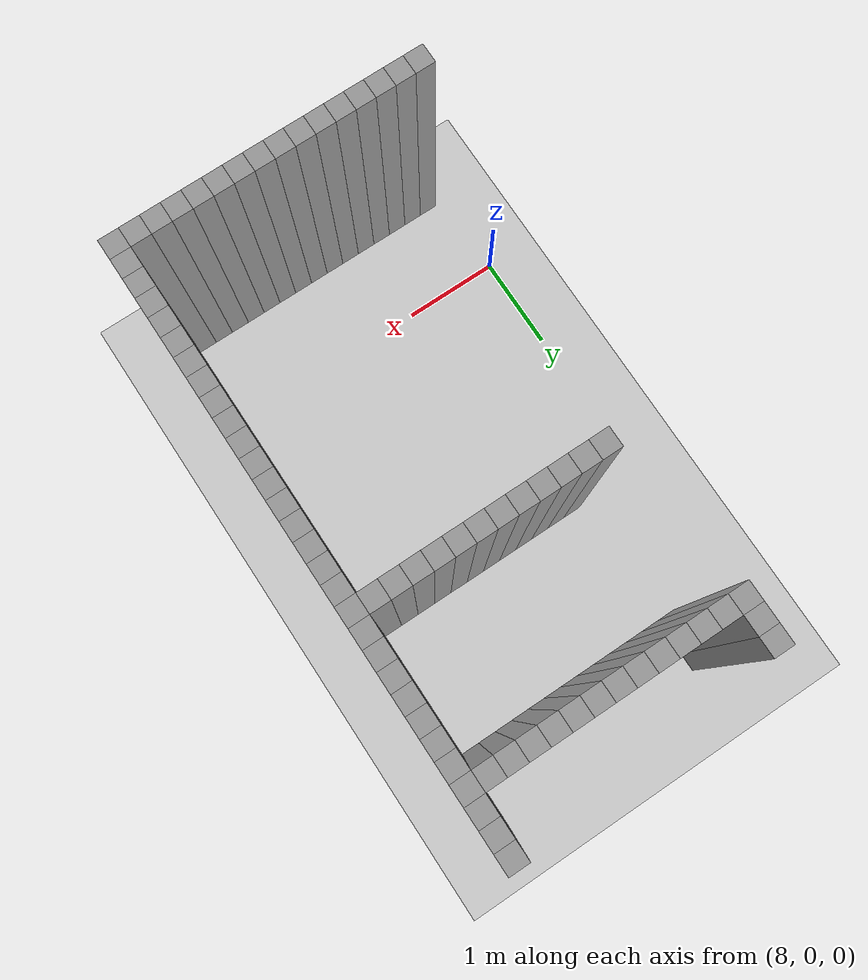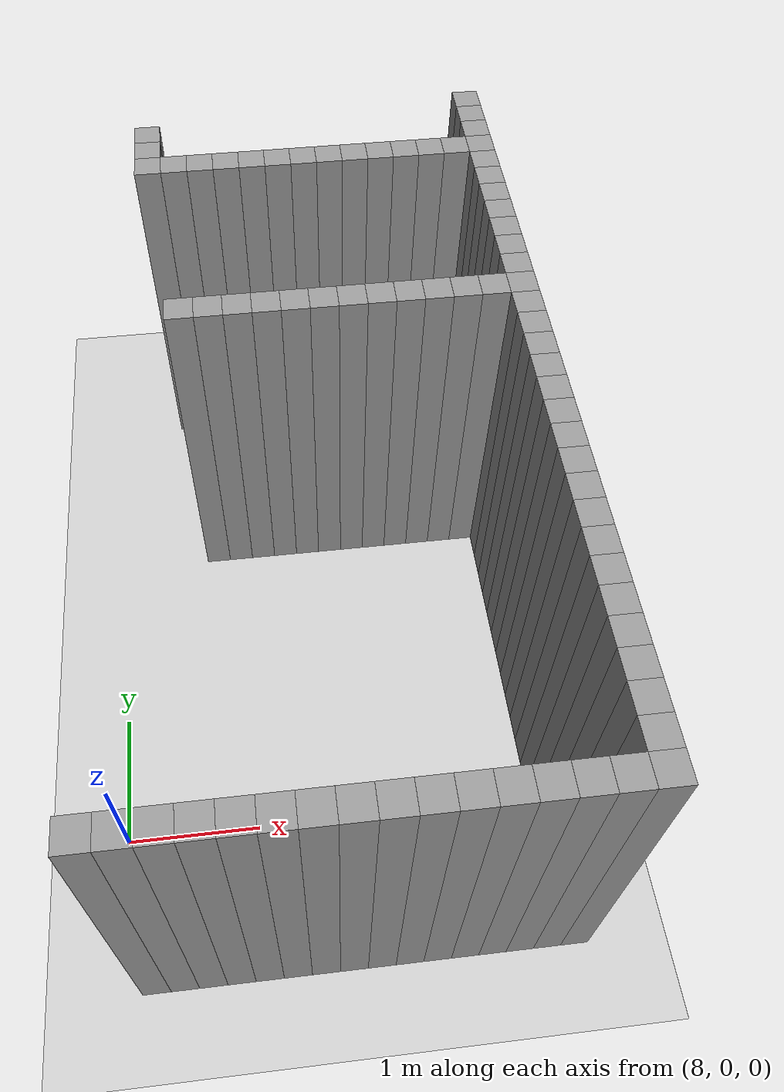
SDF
<sdf version="1.7">
 <world name="default">
  <model name="ground_plane">
   <static>1</static>
   <link name="link">
    <collision name="collision">
     <geometry><plane><normal>0 0 1</normal><size>100 100</size></plane></geometry>
     <surface>
      <contact><collide_bitmask>65535</collide_bitmask></contact>
      <friction><ode><mu>100</mu><mu2>50</mu2></ode></friction>
     </surface>
    </collision>
    <visual name="visual">
     <cast_shadows>0</cast_shadows>
     <geometry><plane><normal>0 0 1</normal><size>100 100</size></plane></geometry>
     <material>
      <script><uri>file://media/materials/scripts/gazebo.material</uri><name>Gazebo/Grey</name></script>
     </material>
    </visual>
   </link>
  </model>
  <model name="image1">
   <pose>-1 -1 0 0 -0 0</pose>
   <link name="Wall_357">
    <collision name="Wall_357_Collision">
     <geometry><box><size>0.2 0.2 3</size></box></geometry>
     <pose>0 0 1.5 0 -0 0</pose>
    </collision>
    <visual name="Wall_357_Visual">
     <pose>0 0 1.5 0 -0 0</pose>
     <geometry><box><size>0.2 0.2 3</size></box></geometry>
     <material>
      <script><uri>file://media/materials/scripts/gazebo.material</uri><name>Gazebo/Grey</name></script>
      <ambient>1 1 1 1</ambient>
     </material>
     <meta><layer>0</layer></meta>
    </visual>
    <pose>9.200000000000001 0.0 0 0 -0 0</pose>
   </link>
   <link name="Wall_360">
    <collision name="Wall_360_Collision">
     <geometry><box><size>0.2 0.2 3</size></box></geometry>
     <pose>0 0 1.5 0 -0 0</pose>
    </collision>
    <visual name="Wall_360_Visual">
     <pose>0 0 1.5 0 -0 0</pose>
     <geometry><box><size>0.2 0.2 3</size></box></geometry>
     <material>
      <script><uri>file://media/materials/scripts/gazebo.material</uri><name>Gazebo/Grey</name></script>
      <ambient>1 1 1 1</ambient>
     </material>
     <meta><layer>0</layer></meta>
    </visual>
    <pose>9.4 0.0 0 0 -0 0</pose>
   </link>
   <link name="Wall_363">
    <collision name="Wall_363_Collision">
     <geometry><box><size>0.2 0.2 3</size></box></geometry>
     <pose>0 0 1.5 0 -0 0</pose>
    </collision>
    <visual name="Wall_363_Visual">
     <pose>0 0 1.5 0 -0 0</pose>
     <geometry><box><size>0.2 0.2 3</size></box></geometry>
     <material>
      <script><uri>file://media/materials/scripts/gazebo.material</uri><name>Gazebo/Grey</name></script>
      <ambient>1 1 1 1</ambient>
     </material>
     <meta><layer>0</layer></meta>
    </visual>
    <pose>9.600000000000001 0.0 0 0 -0 0</pose>
   </link>
   <link name="Wall_364">
    <collision name="Wall_364_Collision">
     <geometry><box><size>0.2 0.2 3</size></box></geometry>
     <pose>0 0 1.5 0 -0 0</pose>
    </collision>
    <visual name="Wall_364_Visual">
     <pose>0 0 1.5 0 -0 0</pose>
     <geometry><box><size>0.2 0.2 3</size></box></geometry>
     <material>
      <script><uri>file://media/materials/scripts/gazebo.material</uri><name>Gazebo/Grey</name></script>
      <ambient>1 1 1 1</ambient>
     </material>
     <meta><layer>0</layer></meta>
    </visual>
    <pose>9.600000000000001 5.2 0 0 -0 0</pose>
   </link>
   <link name="Wall_365">
    <collision name="Wall_365_Collision">
     <geometry><box><size>0.2 0.2 3</size></box></geometry>
     <pose>0 0 1.5 0 -0 0</pose>
    </collision>
    <visual name="Wall_365_Visual">
     <pose>0 0 1.5 0 -0 0</pose>
     <geometry><box><size>0.2 0.2 3</size></box></geometry>
     <material>
      <script><uri>file://media/materials/scripts/gazebo.material</uri><name>Gazebo/Grey</name></script>
      <ambient>1 1 1 1</ambient>
     </material>
     <meta><layer>0</layer></meta>
    </visual>
    <pose>9.600000000000001 5.4 0 0 -0 0</pose>
   </link>
   <link name="Wall_366">
    <collision name="Wall_366_Collision">
     <geometry><box><size>0.2 0.2 3</size></box></geometry>
     <pose>0 0 1.5 0 -0 0</pose>
    </collision>
    <visual name="Wall_366_Visual">
     <pose>0 0 1.5 0 -0 0</pose>
     <geometry><box><size>0.2 0.2 3</size></box></geometry>
     <material>
      <script><uri>file://media/materials/scripts/gazebo.material</uri><name>Gazebo/Grey</name></script>
      <ambient>1 1 1 1</ambient>
     </material>
     <meta><layer>0</layer></meta>
    </visual>
    <pose>9.600000000000001 5.6000000000000005 0 0 -0 0</pose>
   </link>
   <link name="Wall_370">
    <collision name="Wall_370_Collision">
     <geometry><box><size>0.2 0.2 3</size></box></geometry>
     <pose>0 0 1.5 0 -0 0</pose>
    </collision>
    <visual name="Wall_370_Visual">
     <pose>0 0 1.5 0 -0 0</pose>
     <geometry><box><size>0.2 0.2 3</size></box></geometry>
     <material>
      <script><uri>file://media/materials/scripts/gazebo.material</uri><name>Gazebo/Grey</name></script>
      <ambient>1 1 1 1</ambient>
     </material>
     <meta><layer>0</layer></meta>
    </visual>
    <pose>9.8 0.0 0 0 -0 0</pose>
   </link>
   <link name="Wall_371">
    <collision name="Wall_371_Collision">
     <geometry><box><size>0.2 0.2 3</size></box></geometry>
     <pose>0 0 1.5 0 -0 0</pose>
    </collision>
    <visual name="Wall_371_Visual">
     <pose>0 0 1.5 0 -0 0</pose>
     <geometry><box><size>0.2 0.2 3</size></box></geometry>
     <material>
      <script><uri>file://media/materials/scripts/gazebo.material</uri><name>Gazebo/Grey</name></script>
      <ambient>1 1 1 1</ambient>
     </material>
     <meta><layer>0</layer></meta>
    </visual>
    <pose>9.8 3.6 0 0 -0 0</pose>
   </link>
   <link name="Wall_372">
    <collision name="Wall_372_Collision">
     <geometry><box><size>0.2 0.2 3</size></box></geometry>
     <pose>0 0 1.5 0 -0 0</pose>
    </collision>
    <visual name="Wall_372_Visual">
     <pose>0 0 1.5 0 -0 0</pose>
     <geometry><box><size>0.2 0.2 3</size></box></geometry>
     <material>
      <script><uri>file://media/materials/scripts/gazebo.material</uri><name>Gazebo/Grey</name></script>
      <ambient>1 1 1 1</ambient>
     </material>
     <meta><layer>0</layer></meta>
    </visual>
    <pose>9.8 5.2 0 0 -0 0</pose>
   </link>
   <link name="Wall_390">
    <collision name="Wall_390_Collision">
     <geometry><box><size>0.2 0.2 3</size></box></geometry>
     <pose>0 0 1.5 0 -0 0</pose>
    </collision>
    <visual name="Wall_390_Visual">
     <pose>0 0 1.5 0 -0 0</pose>
     <geometry><box><size>0.2 0.2 3</size></box></geometry>
     <material>
      <script><uri>file://media/materials/scripts/gazebo.material</uri><name>Gazebo/Grey</name></script>
      <ambient>1 1 1 1</ambient>
     </material>
     <meta><layer>0</layer></meta>
    </visual>
    <pose>10.0 0.0 0 0 -0 0</pose>
   </link>
   <link name="Wall_391">
    <collision name="Wall_391_Collision">
     <geometry><box><size>0.2 0.2 3</size></box></geometry>
     <pose>0 0 1.5 0 -0 0</pose>
    </collision>
    <visual name="Wall_391_Visual">
     <pose>0 0 1.5 0 -0 0</pose>
     <geometry><box><size>0.2 0.2 3</size></box></geometry>
     <material>
      <script><uri>file://media/materials/scripts/gazebo.material</uri><name>Gazebo/Grey</name></script>
      <ambient>1 1 1 1</ambient>
     </material>
     <meta><layer>0</layer></meta>
    </visual>
    <pose>10.0 3.6 0 0 -0 0</pose>
   </link>
   <link name="Wall_392">
    <collision name="Wall_392_Collision">
     <geometry><box><size>0.2 0.2 3</size></box></geometry>
     <pose>0 0 1.5 0 -0 0</pose>
    </collision>
    <visual name="Wall_392_Visual">
     <pose>0 0 1.5 0 -0 0</pose>
     <geometry><box><size>0.2 0.2 3</size></box></geometry>
     <material>
      <script><uri>file://media/materials/scripts/gazebo.material</uri><name>Gazebo/Grey</name></script>
      <ambient>1 1 1 1</ambient>
     </material>
     <meta><layer>0</layer></meta>
    </visual>
    <pose>10.0 5.2 0 0 -0 0</pose>
   </link>
   <link name="Wall_396">
    <collision name="Wall_396_Collision">
     <geometry><box><size>0.2 0.2 3</size></box></geometry>
     <pose>0 0 1.5 0 -0 0</pose>
    </collision>
    <visual name="Wall_396_Visual">
     <pose>0 0 1.5 0 -0 0</pose>
     <geometry><box><size>0.2 0.2 3</size></box></geometry>
     <material>
      <script><uri>file://media/materials/scripts/gazebo.material</uri><name>Gazebo/Grey</name></script>
      <ambient>1 1 1 1</ambient>
     </material>
     <meta><layer>0</layer></meta>
    </visual>
    <pose>10.200000000000001 0.0 0 0 -0 0</pose>
   </link>
   <link name="Wall_397">
    <collision name="Wall_397_Collision">
     <geometry><box><size>0.2 0.2 3</size></box></geometry>
     <pose>0 0 1.5 0 -0 0</pose>
    </collision>
    <visual name="Wall_397_Visual">
     <pose>0 0 1.5 0 -0 0</pose>
     <geometry><box><size>0.2 0.2 3</size></box></geometry>
     <material>
      <script><uri>file://media/materials/scripts/gazebo.material</uri><name>Gazebo/Grey</name></script>
      <ambient>1 1 1 1</ambient>
     </material>
     <meta><layer>0</layer></meta>
    </visual>
    <pose>10.200000000000001 3.6 0 0 -0 0</pose>
   </link>
   <link name="Wall_398">
    <collision name="Wall_398_Collision">
     <geometry><box><size>0.2 0.2 3</size></box></geometry>
     <pose>0 0 1.5 0 -0 0</pose>
    </collision>
    <visual name="Wall_398_Visual">
     <pose>0 0 1.5 0 -0 0</pose>
     <geometry><box><size>0.2 0.2 3</size></box></geometry>
     <material>
      <script><uri>file://media/materials/scripts/gazebo.material</uri><name>Gazebo/Grey</name></script>
      <ambient>1 1 1 1</ambient>
     </material>
     <meta><layer>0</layer></meta>
    </visual>
    <pose>10.200000000000001 5.2 0 0 -0 0</pose>
   </link>
   <link name="Wall_402">
    <collision name="Wall_402_Collision">
     <geometry><box><size>0.2 0.2 3</size></box></geometry>
     <pose>0 0 1.5 0 -0 0</pose>
    </collision>
    <visual name="Wall_402_Visual">
     <pose>0 0 1.5 0 -0 0</pose>
     <geometry><box><size>0.2 0.2 3</size></box></geometry>
     <material>
      <script><uri>file://media/materials/scripts/gazebo.material</uri><name>Gazebo/Grey</name></script>
      <ambient>1 1 1 1</ambient>
     </material>
     <meta><layer>0</layer></meta>
    </visual>
    <pose>10.4 0.0 0 0 -0 0</pose>
   </link>
   <link name="Wall_403">
    <collision name="Wall_403_Collision">
     <geometry><box><size>0.2 0.2 3</size></box></geometry>
     <pose>0 0 1.5 0 -0 0</pose>
    </collision>
    <visual name="Wall_403_Visual">
     <pose>0 0 1.5 0 -0 0</pose>
     <geometry><box><size>0.2 0.2 3</size></box></geometry>
     <material>
      <script><uri>file://media/materials/scripts/gazebo.material</uri><name>Gazebo/Grey</name></script>
      <ambient>1 1 1 1</ambient>
     </material>
     <meta><layer>0</layer></meta>
    </visual>
    <pose>10.4 3.6 0 0 -0 0</pose>
   </link>
   <link name="Wall_404">
    <collision name="Wall_404_Collision">
     <geometry><box><size>0.2 0.2 3</size></box></geometry>
     <pose>0 0 1.5 0 -0 0</pose>
    </collision>
    <visual name="Wall_404_Visual">
     <pose>0 0 1.5 0 -0 0</pose>
     <geometry><box><size>0.2 0.2 3</size></box></geometry>
     <material>
      <script><uri>file://media/materials/scripts/gazebo.material</uri><name>Gazebo/Grey</name></script>
      <ambient>1 1 1 1</ambient>
     </material>
     <meta><layer>0</layer></meta>
    </visual>
    <pose>10.4 5.2 0 0 -0 0</pose>
   </link>
   <link name="Wall_407">
    <collision name="Wall_407_Collision">
     <geometry><box><size>0.2 0.2 3</size></box></geometry>
     <pose>0 0 1.5 0 -0 0</pose>
    </collision>
    <visual name="Wall_407_Visual">
     <pose>0 0 1.5 0 -0 0</pose>
     <geometry><box><size>0.2 0.2 3</size></box></geometry>
     <material>
      <script><uri>file://media/materials/scripts/gazebo.material</uri><name>Gazebo/Grey</name></script>
      <ambient>1 1 1 1</ambient>
     </material>
     <meta><layer>0</layer></meta>
    </visual>
    <pose>10.600000000000001 0.0 0 0 -0 0</pose>
   </link>
   <link name="Wall_408">
    <collision name="Wall_408_Collision">
     <geometry><box><size>0.2 0.2 3</size></box></geometry>
     <pose>0 0 1.5 0 -0 0</pose>
    </collision>
    <visual name="Wall_408_Visual">
     <pose>0 0 1.5 0 -0 0</pose>
     <geometry><box><size>0.2 0.2 3</size></box></geometry>
     <material>
      <script><uri>file://media/materials/scripts/gazebo.material</uri><name>Gazebo/Grey</name></script>
      <ambient>1 1 1 1</ambient>
     </material>
     <meta><layer>0</layer></meta>
    </visual>
    <pose>10.600000000000001 3.6 0 0 -0 0</pose>
   </link>
   <link name="Wall_409">
    <collision name="Wall_409_Collision">
     <geometry><box><size>0.2 0.2 3</size></box></geometry>
     <pose>0 0 1.5 0 -0 0</pose>
    </collision>
    <visual name="Wall_409_Visual">
     <pose>0 0 1.5 0 -0 0</pose>
     <geometry><box><size>0.2 0.2 3</size></box></geometry>
     <material>
      <script><uri>file://media/materials/scripts/gazebo.material</uri><name>Gazebo/Grey</name></script>
      <ambient>1 1 1 1</ambient>
     </material>
     <meta><layer>0</layer></meta>
    </visual>
    <pose>10.600000000000001 5.2 0 0 -0 0</pose>
   </link>
   <link name="Wall_412">
    <collision name="Wall_412_Collision">
     <geometry><box><size>0.2 0.2 3</size></box></geometry>
     <pose>0 0 1.5 0 -0 0</pose>
    </collision>
    <visual name="Wall_412_Visual">
     <pose>0 0 1.5 0 -0 0</pose>
     <geometry><box><size>0.2 0.2 3</size></box></geometry>
     <material>
      <script><uri>file://media/materials/scripts/gazebo.material</uri><name>Gazebo/Grey</name></script>
      <ambient>1 1 1 1</ambient>
     </material>
     <meta><layer>0</layer></meta>
    </visual>
    <pose>10.8 0.0 0 0 -0 0</pose>
   </link>
   <link name="Wall_413">
    <collision name="Wall_413_Collision">
     <geometry><box><size>0.2 0.2 3</size></box></geometry>
     <pose>0 0 1.5 0 -0 0</pose>
    </collision>
    <visual name="Wall_413_Visual">
     <pose>0 0 1.5 0 -0 0</pose>
     <geometry><box><size>0.2 0.2 3</size></box></geometry>
     <material>
      <script><uri>file://media/materials/scripts/gazebo.material</uri><name>Gazebo/Grey</name></script>
      <ambient>1 1 1 1</ambient>
     </material>
     <meta><layer>0</layer></meta>
    </visual>
    <pose>10.8 3.6 0 0 -0 0</pose>
   </link>
   <link name="Wall_414">
    <collision name="Wall_414_Collision">
     <geometry><box><size>0.2 0.2 3</size></box></geometry>
     <pose>0 0 1.5 0 -0 0</pose>
    </collision>
    <visual name="Wall_414_Visual">
     <pose>0 0 1.5 0 -0 0</pose>
     <geometry><box><size>0.2 0.2 3</size></box></geometry>
     <material>
      <script><uri>file://media/materials/scripts/gazebo.material</uri><name>Gazebo/Grey</name></script>
      <ambient>1 1 1 1</ambient>
     </material>
     <meta><layer>0</layer></meta>
    </visual>
    <pose>10.8 5.2 0 0 -0 0</pose>
   </link>
   <link name="Wall_417">
    <collision name="Wall_417_Collision">
     <geometry><box><size>0.2 0.2 3</size></box></geometry>
     <pose>0 0 1.5 0 -0 0</pose>
    </collision>
    <visual name="Wall_417_Visual">
     <pose>0 0 1.5 0 -0 0</pose>
     <geometry><box><size>0.2 0.2 3</size></box></geometry>
     <material>
      <script><uri>file://media/materials/scripts/gazebo.material</uri><name>Gazebo/Grey</name></script>
      <ambient>1 1 1 1</ambient>
     </material>
     <meta><layer>0</layer></meta>
    </visual>
    <pose>11.0 0.0 0 0 -0 0</pose>
   </link>
   <link name="Wall_418">
    <collision name="Wall_418_Collision">
     <geometry><box><size>0.2 0.2 3</size></box></geometry>
     <pose>0 0 1.5 0 -0 0</pose>
    </collision>
    <visual name="Wall_418_Visual">
     <pose>0 0 1.5 0 -0 0</pose>
     <geometry><box><size>0.2 0.2 3</size></box></geometry>
     <material>
      <script><uri>file://media/materials/scripts/gazebo.material</uri><name>Gazebo/Grey</name></script>
      <ambient>1 1 1 1</ambient>
     </material>
     <meta><layer>0</layer></meta>
    </visual>
    <pose>11.0 3.6 0 0 -0 0</pose>
   </link>
   <link name="Wall_419">
    <collision name="Wall_419_Collision">
     <geometry><box><size>0.2 0.2 3</size></box></geometry>
     <pose>0 0 1.5 0 -0 0</pose>
    </collision>
    <visual name="Wall_419_Visual">
     <pose>0 0 1.5 0 -0 0</pose>
     <geometry><box><size>0.2 0.2 3</size></box></geometry>
     <material>
      <script><uri>file://media/materials/scripts/gazebo.material</uri><name>Gazebo/Grey</name></script>
      <ambient>1 1 1 1</ambient>
     </material>
     <meta><layer>0</layer></meta>
    </visual>
    <pose>11.0 5.2 0 0 -0 0</pose>
   </link>
   <link name="Wall_422">
    <collision name="Wall_422_Collision">
     <geometry><box><size>0.2 0.2 3</size></box></geometry>
     <pose>0 0 1.5 0 -0 0</pose>
    </collision>
    <visual name="Wall_422_Visual">
     <pose>0 0 1.5 0 -0 0</pose>
     <geometry><box><size>0.2 0.2 3</size></box></geometry>
     <material>
      <script><uri>file://media/materials/scripts/gazebo.material</uri><name>Gazebo/Grey</name></script>
      <ambient>1 1 1 1</ambient>
     </material>
     <meta><layer>0</layer></meta>
    </visual>
    <pose>11.200000000000001 0.0 0 0 -0 0</pose>
   </link>
   <link name="Wall_423">
    <collision name="Wall_423_Collision">
     <geometry><box><size>0.2 0.2 3</size></box></geometry>
     <pose>0 0 1.5 0 -0 0</pose>
    </collision>
    <visual name="Wall_423_Visual">
     <pose>0 0 1.5 0 -0 0</pose>
     <geometry><box><size>0.2 0.2 3</size></box></geometry>
     <material>
      <script><uri>file://media/materials/scripts/gazebo.material</uri><name>Gazebo/Grey</name></script>
      <ambient>1 1 1 1</ambient>
     </material>
     <meta><layer>0</layer></meta>
    </visual>
    <pose>11.200000000000001 3.6 0 0 -0 0</pose>
   </link>
   <link name="Wall_424">
    <collision name="Wall_424_Collision">
     <geometry><box><size>0.2 0.2 3</size></box></geometry>
     <pose>0 0 1.5 0 -0 0</pose>
    </collision>
    <visual name="Wall_424_Visual">
     <pose>0 0 1.5 0 -0 0</pose>
     <geometry><box><size>0.2 0.2 3</size></box></geometry>
     <material>
      <script><uri>file://media/materials/scripts/gazebo.material</uri><name>Gazebo/Grey</name></script>
      <ambient>1 1 1 1</ambient>
     </material>
     <meta><layer>0</layer></meta>
    </visual>
    <pose>11.200000000000001 5.2 0 0 -0 0</pose>
   </link>
   <link name="Wall_427">
    <collision name="Wall_427_Collision">
     <geometry><box><size>0.2 0.2 3</size></box></geometry>
     <pose>0 0 1.5 0 -0 0</pose>
    </collision>
    <visual name="Wall_427_Visual">
     <pose>0 0 1.5 0 -0 0</pose>
     <geometry><box><size>0.2 0.2 3</size></box></geometry>
     <material>
      <script><uri>file://media/materials/scripts/gazebo.material</uri><name>Gazebo/Grey</name></script>
      <ambient>1 1 1 1</ambient>
     </material>
     <meta><layer>0</layer></meta>
    </visual>
    <pose>11.4 0.0 0 0 -0 0</pose>
   </link>
   <link name="Wall_428">
    <collision name="Wall_428_Collision">
     <geometry><box><size>0.2 0.2 3</size></box></geometry>
     <pose>0 0 1.5 0 -0 0</pose>
    </collision>
    <visual name="Wall_428_Visual">
     <pose>0 0 1.5 0 -0 0</pose>
     <geometry><box><size>0.2 0.2 3</size></box></geometry>
     <material>
      <script><uri>file://media/materials/scripts/gazebo.material</uri><name>Gazebo/Grey</name></script>
      <ambient>1 1 1 1</ambient>
     </material>
     <meta><layer>0</layer></meta>
    </visual>
    <pose>11.4 3.6 0 0 -0 0</pose>
   </link>
   <link name="Wall_429">
    <collision name="Wall_429_Collision">
     <geometry><box><size>0.2 0.2 3</size></box></geometry>
     <pose>0 0 1.5 0 -0 0</pose>
    </collision>
    <visual name="Wall_429_Visual">
     <pose>0 0 1.5 0 -0 0</pose>
     <geometry><box><size>0.2 0.2 3</size></box></geometry>
     <material>
      <script><uri>file://media/materials/scripts/gazebo.material</uri><name>Gazebo/Grey</name></script>
      <ambient>1 1 1 1</ambient>
     </material>
     <meta><layer>0</layer></meta>
    </visual>
    <pose>11.4 5.2 0 0 -0 0</pose>
   </link>
   <link name="Wall_432">
    <collision name="Wall_432_Collision">
     <geometry><box><size>0.2 0.2 3</size></box></geometry>
     <pose>0 0 1.5 0 -0 0</pose>
    </collision>
    <visual name="Wall_432_Visual">
     <pose>0 0 1.5 0 -0 0</pose>
     <geometry><box><size>0.2 0.2 3</size></box></geometry>
     <material>
      <script><uri>file://media/materials/scripts/gazebo.material</uri><name>Gazebo/Grey</name></script>
      <ambient>1 1 1 1</ambient>
     </material>
     <meta><layer>0</layer></meta>
    </visual>
    <pose>11.600000000000001 0.0 0 0 -0 0</pose>
   </link>
   <link name="Wall_433">
    <collision name="Wall_433_Collision">
     <geometry><box><size>0.2 0.2 3</size></box></geometry>
     <pose>0 0 1.5 0 -0 0</pose>
    </collision>
    <visual name="Wall_433_Visual">
     <pose>0 0 1.5 0 -0 0</pose>
     <geometry><box><size>0.2 0.2 3</size></box></geometry>
     <material>
      <script><uri>file://media/materials/scripts/gazebo.material</uri><name>Gazebo/Grey</name></script>
      <ambient>1 1 1 1</ambient>
     </material>
     <meta><layer>0</layer></meta>
    </visual>
    <pose>11.600000000000001 3.6 0 0 -0 0</pose>
   </link>
   <link name="Wall_434">
    <collision name="Wall_434_Collision">
     <geometry><box><size>0.2 0.2 3</size></box></geometry>
     <pose>0 0 1.5 0 -0 0</pose>
    </collision>
    <visual name="Wall_434_Visual">
     <pose>0 0 1.5 0 -0 0</pose>
     <geometry><box><size>0.2 0.2 3</size></box></geometry>
     <material>
      <script><uri>file://media/materials/scripts/gazebo.material</uri><name>Gazebo/Grey</name></script>
      <ambient>1 1 1 1</ambient>
     </material>
     <meta><layer>0</layer></meta>
    </visual>
    <pose>11.600000000000001 5.2 0 0 -0 0</pose>
   </link>
   <link name="Wall_437">
    <collision name="Wall_437_Collision">
     <geometry><box><size>0.2 0.2 3</size></box></geometry>
     <pose>0 0 1.5 0 -0 0</pose>
    </collision>
    <visual name="Wall_437_Visual">
     <pose>0 0 1.5 0 -0 0</pose>
     <geometry><box><size>0.2 0.2 3</size></box></geometry>
     <material>
      <script><uri>file://media/materials/scripts/gazebo.material</uri><name>Gazebo/Grey</name></script>
      <ambient>1 1 1 1</ambient>
     </material>
     <meta><layer>0</layer></meta>
    </visual>
    <pose>11.8 0.0 0 0 -0 0</pose>
   </link>
   <link name="Wall_438">
    <collision name="Wall_438_Collision">
     <geometry><box><size>0.2 0.2 3</size></box></geometry>
     <pose>0 0 1.5 0 -0 0</pose>
    </collision>
    <visual name="Wall_438_Visual">
     <pose>0 0 1.5 0 -0 0</pose>
     <geometry><box><size>0.2 0.2 3</size></box></geometry>
     <material>
      <script><uri>file://media/materials/scripts/gazebo.material</uri><name>Gazebo/Grey</name></script>
      <ambient>1 1 1 1</ambient>
     </material>
     <meta><layer>0</layer></meta>
    </visual>
    <pose>11.8 3.6 0 0 -0 0</pose>
   </link>
   <link name="Wall_439">
    <collision name="Wall_439_Collision">
     <geometry><box><size>0.2 0.2 3</size></box></geometry>
     <pose>0 0 1.5 0 -0 0</pose>
    </collision>
    <visual name="Wall_439_Visual">
     <pose>0 0 1.5 0 -0 0</pose>
     <geometry><box><size>0.2 0.2 3</size></box></geometry>
     <material>
      <script><uri>file://media/materials/scripts/gazebo.material</uri><name>Gazebo/Grey</name></script>
      <ambient>1 1 1 1</ambient>
     </material>
     <meta><layer>0</layer></meta>
    </visual>
    <pose>11.8 5.2 0 0 -0 0</pose>
   </link>
   <link name="Wall_442">
    <collision name="Wall_442_Collision">
     <geometry><box><size>0.2 0.2 3</size></box></geometry>
     <pose>0 0 1.5 0 -0 0</pose>
    </collision>
    <visual name="Wall_442_Visual">
     <pose>0 0 1.5 0 -0 0</pose>
     <geometry><box><size>0.2 0.2 3</size></box></geometry>
     <material>
      <script><uri>file://media/materials/scripts/gazebo.material</uri><name>Gazebo/Grey</name></script>
      <ambient>1 1 1 1</ambient>
     </material>
     <meta><layer>0</layer></meta>
    </visual>
    <pose>12.0 0.0 0 0 -0 0</pose>
   </link>
   <link name="Wall_443">
    <collision name="Wall_443_Collision">
     <geometry><box><size>0.2 0.2 3</size></box></geometry>
     <pose>0 0 1.5 0 -0 0</pose>
    </collision>
    <visual name="Wall_443_Visual">
     <pose>0 0 1.5 0 -0 0</pose>
     <geometry><box><size>0.2 0.2 3</size></box></geometry>
     <material>
      <script><uri>file://media/materials/scripts/gazebo.material</uri><name>Gazebo/Grey</name></script>
      <ambient>1 1 1 1</ambient>
     </material>
     <meta><layer>0</layer></meta>
    </visual>
    <pose>12.0 3.6 0 0 -0 0</pose>
   </link>
   <link name="Wall_444">
    <collision name="Wall_444_Collision">
     <geometry><box><size>0.2 0.2 3</size></box></geometry>
     <pose>0 0 1.5 0 -0 0</pose>
    </collision>
    <visual name="Wall_444_Visual">
     <pose>0 0 1.5 0 -0 0</pose>
     <geometry><box><size>0.2 0.2 3</size></box></geometry>
     <material>
      <script><uri>file://media/materials/scripts/gazebo.material</uri><name>Gazebo/Grey</name></script>
      <ambient>1 1 1 1</ambient>
     </material>
     <meta><layer>0</layer></meta>
    </visual>
    <pose>12.0 5.2 0 0 -0 0</pose>
   </link>
   <link name="Wall_448">
    <collision name="Wall_448_Collision">
     <geometry><box><size>0.2 0.2 3</size></box></geometry>
     <pose>0 0 1.5 0 -0 0</pose>
    </collision>
    <visual name="Wall_448_Visual">
     <pose>0 0 1.5 0 -0 0</pose>
     <geometry><box><size>0.2 0.2 3</size></box></geometry>
     <material>
      <script><uri>file://media/materials/scripts/gazebo.material</uri><name>Gazebo/Grey</name></script>
      <ambient>1 1 1 1</ambient>
     </material>
     <meta><layer>0</layer></meta>
    </visual>
    <pose>12.200000000000001 0.0 0 0 -0 0</pose>
   </link>
   <link name="Wall_449">
    <collision name="Wall_449_Collision">
     <geometry><box><size>0.2 0.2 3</size></box></geometry>
     <pose>0 0 1.5 0 -0 0</pose>
    </collision>
    <visual name="Wall_449_Visual">
     <pose>0 0 1.5 0 -0 0</pose>
     <geometry><box><size>0.2 0.2 3</size></box></geometry>
     <material>
      <script><uri>file://media/materials/scripts/gazebo.material</uri><name>Gazebo/Grey</name></script>
      <ambient>1 1 1 1</ambient>
     </material>
     <meta><layer>0</layer></meta>
    </visual>
    <pose>12.200000000000001 0.2 0 0 -0 0</pose>
   </link>
   <link name="Wall_450">
    <collision name="Wall_450_Collision">
     <geometry><box><size>0.2 0.2 3</size></box></geometry>
     <pose>0 0 1.5 0 -0 0</pose>
    </collision>
    <visual name="Wall_450_Visual">
     <pose>0 0 1.5 0 -0 0</pose>
     <geometry><box><size>0.2 0.2 3</size></box></geometry>
     <material>
      <script><uri>file://media/materials/scripts/gazebo.material</uri><name>Gazebo/Grey</name></script>
      <ambient>1 1 1 1</ambient>
     </material>
     <meta><layer>0</layer></meta>
    </visual>
    <pose>12.200000000000001 0.4 0 0 -0 0</pose>
   </link>
   <link name="Wall_451">
    <collision name="Wall_451_Collision">
     <geometry><box><size>0.2 0.2 3</size></box></geometry>
     <pose>0 0 1.5 0 -0 0</pose>
    </collision>
    <visual name="Wall_451_Visual">
     <pose>0 0 1.5 0 -0 0</pose>
     <geometry><box><size>0.2 0.2 3</size></box></geometry>
     <material>
      <script><uri>file://media/materials/scripts/gazebo.material</uri><name>Gazebo/Grey</name></script>
      <ambient>1 1 1 1</ambient>
     </material>
     <meta><layer>0</layer></meta>
    </visual>
    <pose>12.200000000000001 0.6000000000000001 0 0 -0 0</pose>
   </link>
   <link name="Wall_452">
    <collision name="Wall_452_Collision">
     <geometry><box><size>0.2 0.2 3</size></box></geometry>
     <pose>0 0 1.5 0 -0 0</pose>
    </collision>
    <visual name="Wall_452_Visual">
     <pose>0 0 1.5 0 -0 0</pose>
     <geometry><box><size>0.2 0.2 3</size></box></geometry>
     <material>
      <script><uri>file://media/materials/scripts/gazebo.material</uri><name>Gazebo/Grey</name></script>
      <ambient>1 1 1 1</ambient>
     </material>
     <meta><layer>0</layer></meta>
    </visual>
    <pose>12.200000000000001 0.8 0 0 -0 0</pose>
   </link>
   <link name="Wall_453">
    <collision name="Wall_453_Collision">
     <geometry><box><size>0.2 0.2 3</size></box></geometry>
     <pose>0 0 1.5 0 -0 0</pose>
    </collision>
    <visual name="Wall_453_Visual">
     <pose>0 0 1.5 0 -0 0</pose>
     <geometry><box><size>0.2 0.2 3</size></box></geometry>
     <material>
      <script><uri>file://media/materials/scripts/gazebo.material</uri><name>Gazebo/Grey</name></script>
      <ambient>1 1 1 1</ambient>
     </material>
     <meta><layer>0</layer></meta>
    </visual>
    <pose>12.200000000000001 1.0 0 0 -0 0</pose>
   </link>
   <link name="Wall_454">
    <collision name="Wall_454_Collision">
     <geometry><box><size>0.2 0.2 3</size></box></geometry>
     <pose>0 0 1.5 0 -0 0</pose>
    </collision>
    <visual name="Wall_454_Visual">
     <pose>0 0 1.5 0 -0 0</pose>
     <geometry><box><size>0.2 0.2 3</size></box></geometry>
     <material>
      <script><uri>file://media/materials/scripts/gazebo.material</uri><name>Gazebo/Grey</name></script>
      <ambient>1 1 1 1</ambient>
     </material>
     <meta><layer>0</layer></meta>
    </visual>
    <pose>12.200000000000001 1.2000000000000002 0 0 -0 0</pose>
   </link>
   <link name="Wall_455">
    <collision name="Wall_455_Collision">
     <geometry><box><size>0.2 0.2 3</size></box></geometry>
     <pose>0 0 1.5 0 -0 0</pose>
    </collision>
    <visual name="Wall_455_Visual">
     <pose>0 0 1.5 0 -0 0</pose>
     <geometry><box><size>0.2 0.2 3</size></box></geometry>
     <material>
      <script><uri>file://media/materials/scripts/gazebo.material</uri><name>Gazebo/Grey</name></script>
      <ambient>1 1 1 1</ambient>
     </material>
     <meta><layer>0</layer></meta>
    </visual>
    <pose>12.200000000000001 1.4000000000000001 0 0 -0 0</pose>
   </link>
   <link name="Wall_456">
    <collision name="Wall_456_Collision">
     <geometry><box><size>0.2 0.2 3</size></box></geometry>
     <pose>0 0 1.5 0 -0 0</pose>
    </collision>
    <visual name="Wall_456_Visual">
     <pose>0 0 1.5 0 -0 0</pose>
     <geometry><box><size>0.2 0.2 3</size></box></geometry>
     <material>
      <script><uri>file://media/materials/scripts/gazebo.material</uri><name>Gazebo/Grey</name></script>
      <ambient>1 1 1 1</ambient>
     </material>
     <meta><layer>0</layer></meta>
    </visual>
    <pose>12.200000000000001 1.6 0 0 -0 0</pose>
   </link>
   <link name="Wall_457">
    <collision name="Wall_457_Collision">
     <geometry><box><size>0.2 0.2 3</size></box></geometry>
     <pose>0 0 1.5 0 -0 0</pose>
    </collision>
    <visual name="Wall_457_Visual">
     <pose>0 0 1.5 0 -0 0</pose>
     <geometry><box><size>0.2 0.2 3</size></box></geometry>
     <material>
      <script><uri>file://media/materials/scripts/gazebo.material</uri><name>Gazebo/Grey</name></script>
      <ambient>1 1 1 1</ambient>
     </material>
     <meta><layer>0</layer></meta>
    </visual>
    <pose>12.200000000000001 1.8 0 0 -0 0</pose>
   </link>
   <link name="Wall_458">
    <collision name="Wall_458_Collision">
     <geometry><box><size>0.2 0.2 3</size></box></geometry>
     <pose>0 0 1.5 0 -0 0</pose>
    </collision>
    <visual name="Wall_458_Visual">
     <pose>0 0 1.5 0 -0 0</pose>
     <geometry><box><size>0.2 0.2 3</size></box></geometry>
     <material>
      <script><uri>file://media/materials/scripts/gazebo.material</uri><name>Gazebo/Grey</name></script>
      <ambient>1 1 1 1</ambient>
     </material>
     <meta><layer>0</layer></meta>
    </visual>
    <pose>12.200000000000001 2.0 0 0 -0 0</pose>
   </link>
   <link name="Wall_459">
    <collision name="Wall_459_Collision">
     <geometry><box><size>0.2 0.2 3</size></box></geometry>
     <pose>0 0 1.5 0 -0 0</pose>
    </collision>
    <visual name="Wall_459_Visual">
     <pose>0 0 1.5 0 -0 0</pose>
     <geometry><box><size>0.2 0.2 3</size></box></geometry>
     <material>
      <script><uri>file://media/materials/scripts/gazebo.material</uri><name>Gazebo/Grey</name></script>
      <ambient>1 1 1 1</ambient>
     </material>
     <meta><layer>0</layer></meta>
    </visual>
    <pose>12.200000000000001 2.2 0 0 -0 0</pose>
   </link>
   <link name="Wall_460">
    <collision name="Wall_460_Collision">
     <geometry><box><size>0.2 0.2 3</size></box></geometry>
     <pose>0 0 1.5 0 -0 0</pose>
    </collision>
    <visual name="Wall_460_Visual">
     <pose>0 0 1.5 0 -0 0</pose>
     <geometry><box><size>0.2 0.2 3</size></box></geometry>
     <material>
      <script><uri>file://media/materials/scripts/gazebo.material</uri><name>Gazebo/Grey</name></script>
      <ambient>1 1 1 1</ambient>
     </material>
     <meta><layer>0</layer></meta>
    </visual>
    <pose>12.200000000000001 2.4000000000000004 0 0 -0 0</pose>
   </link>
   <link name="Wall_461">
    <collision name="Wall_461_Collision">
     <geometry><box><size>0.2 0.2 3</size></box></geometry>
     <pose>0 0 1.5 0 -0 0</pose>
    </collision>
    <visual name="Wall_461_Visual">
     <pose>0 0 1.5 0 -0 0</pose>
     <geometry><box><size>0.2 0.2 3</size></box></geometry>
     <material>
      <script><uri>file://media/materials/scripts/gazebo.material</uri><name>Gazebo/Grey</name></script>
      <ambient>1 1 1 1</ambient>
     </material>
     <meta><layer>0</layer></meta>
    </visual>
    <pose>12.200000000000001 2.6 0 0 -0 0</pose>
   </link>
   <link name="Wall_462">
    <collision name="Wall_462_Collision">
     <geometry><box><size>0.2 0.2 3</size></box></geometry>
     <pose>0 0 1.5 0 -0 0</pose>
    </collision>
    <visual name="Wall_462_Visual">
     <pose>0 0 1.5 0 -0 0</pose>
     <geometry><box><size>0.2 0.2 3</size></box></geometry>
     <material>
      <script><uri>file://media/materials/scripts/gazebo.material</uri><name>Gazebo/Grey</name></script>
      <ambient>1 1 1 1</ambient>
     </material>
     <meta><layer>0</layer></meta>
    </visual>
    <pose>12.200000000000001 2.8000000000000003 0 0 -0 0</pose>
   </link>
   <link name="Wall_463">
    <collision name="Wall_463_Collision">
     <geometry><box><size>0.2 0.2 3</size></box></geometry>
     <pose>0 0 1.5 0 -0 0</pose>
    </collision>
    <visual name="Wall_463_Visual">
     <pose>0 0 1.5 0 -0 0</pose>
     <geometry><box><size>0.2 0.2 3</size></box></geometry>
     <material>
      <script><uri>file://media/materials/scripts/gazebo.material</uri><name>Gazebo/Grey</name></script>
      <ambient>1 1 1 1</ambient>
     </material>
     <meta><layer>0</layer></meta>
    </visual>
    <pose>12.200000000000001 3.0 0 0 -0 0</pose>
   </link>
   <link name="Wall_464">
    <collision name="Wall_464_Collision">
     <geometry><box><size>0.2 0.2 3</size></box></geometry>
     <pose>0 0 1.5 0 -0 0</pose>
    </collision>
    <visual name="Wall_464_Visual">
     <pose>0 0 1.5 0 -0 0</pose>
     <geometry><box><size>0.2 0.2 3</size></box></geometry>
     <material>
      <script><uri>file://media/materials/scripts/gazebo.material</uri><name>Gazebo/Grey</name></script>
      <ambient>1 1 1 1</ambient>
     </material>
     <meta><layer>0</layer></meta>
    </visual>
    <pose>12.200000000000001 3.2 0 0 -0 0</pose>
   </link>
   <link name="Wall_465">
    <collision name="Wall_465_Collision">
     <geometry><box><size>0.2 0.2 3</size></box></geometry>
     <pose>0 0 1.5 0 -0 0</pose>
    </collision>
    <visual name="Wall_465_Visual">
     <pose>0 0 1.5 0 -0 0</pose>
     <geometry><box><size>0.2 0.2 3</size></box></geometry>
     <material>
      <script><uri>file://media/materials/scripts/gazebo.material</uri><name>Gazebo/Grey</name></script>
      <ambient>1 1 1 1</ambient>
     </material>
     <meta><layer>0</layer></meta>
    </visual>
    <pose>12.200000000000001 3.4000000000000004 0 0 -0 0</pose>
   </link>
   <link name="Wall_466">
    <collision name="Wall_466_Collision">
     <geometry><box><size>0.2 0.2 3</size></box></geometry>
     <pose>0 0 1.5 0 -0 0</pose>
    </collision>
    <visual name="Wall_466_Visual">
     <pose>0 0 1.5 0 -0 0</pose>
     <geometry><box><size>0.2 0.2 3</size></box></geometry>
     <material>
      <script><uri>file://media/materials/scripts/gazebo.material</uri><name>Gazebo/Grey</name></script>
      <ambient>1 1 1 1</ambient>
     </material>
     <meta><layer>0</layer></meta>
    </visual>
    <pose>12.200000000000001 3.6 0 0 -0 0</pose>
   </link>
   <link name="Wall_467">
    <collision name="Wall_467_Collision">
     <geometry><box><size>0.2 0.2 3</size></box></geometry>
     <pose>0 0 1.5 0 -0 0</pose>
    </collision>
    <visual name="Wall_467_Visual">
     <pose>0 0 1.5 0 -0 0</pose>
     <geometry><box><size>0.2 0.2 3</size></box></geometry>
     <material>
      <script><uri>file://media/materials/scripts/gazebo.material</uri><name>Gazebo/Grey</name></script>
      <ambient>1 1 1 1</ambient>
     </material>
     <meta><layer>0</layer></meta>
    </visual>
    <pose>12.200000000000001 3.8000000000000003 0 0 -0 0</pose>
   </link>
   <link name="Wall_468">
    <collision name="Wall_468_Collision">
     <geometry><box><size>0.2 0.2 3</size></box></geometry>
     <pose>0 0 1.5 0 -0 0</pose>
    </collision>
    <visual name="Wall_468_Visual">
     <pose>0 0 1.5 0 -0 0</pose>
     <geometry><box><size>0.2 0.2 3</size></box></geometry>
     <material>
      <script><uri>file://media/materials/scripts/gazebo.material</uri><name>Gazebo/Grey</name></script>
      <ambient>1 1 1 1</ambient>
     </material>
     <meta><layer>0</layer></meta>
    </visual>
    <pose>12.200000000000001 4.0 0 0 -0 0</pose>
   </link>
   <link name="Wall_469">
    <collision name="Wall_469_Collision">
     <geometry><box><size>0.2 0.2 3</size></box></geometry>
     <pose>0 0 1.5 0 -0 0</pose>
    </collision>
    <visual name="Wall_469_Visual">
     <pose>0 0 1.5 0 -0 0</pose>
     <geometry><box><size>0.2 0.2 3</size></box></geometry>
     <material>
      <script><uri>file://media/materials/scripts/gazebo.material</uri><name>Gazebo/Grey</name></script>
      <ambient>1 1 1 1</ambient>
     </material>
     <meta><layer>0</layer></meta>
    </visual>
    <pose>12.200000000000001 4.2 0 0 -0 0</pose>
   </link>
   <link name="Wall_470">
    <collision name="Wall_470_Collision">
     <geometry><box><size>0.2 0.2 3</size></box></geometry>
     <pose>0 0 1.5 0 -0 0</pose>
    </collision>
    <visual name="Wall_470_Visual">
     <pose>0 0 1.5 0 -0 0</pose>
     <geometry><box><size>0.2 0.2 3</size></box></geometry>
     <material>
      <script><uri>file://media/materials/scripts/gazebo.material</uri><name>Gazebo/Grey</name></script>
      <ambient>1 1 1 1</ambient>
     </material>
     <meta><layer>0</layer></meta>
    </visual>
    <pose>12.200000000000001 4.4 0 0 -0 0</pose>
   </link>
   <link name="Wall_471">
    <collision name="Wall_471_Collision">
     <geometry><box><size>0.2 0.2 3</size></box></geometry>
     <pose>0 0 1.5 0 -0 0</pose>
    </collision>
    <visual name="Wall_471_Visual">
     <pose>0 0 1.5 0 -0 0</pose>
     <geometry><box><size>0.2 0.2 3</size></box></geometry>
     <material>
      <script><uri>file://media/materials/scripts/gazebo.material</uri><name>Gazebo/Grey</name></script>
      <ambient>1 1 1 1</ambient>
     </material>
     <meta><layer>0</layer></meta>
    </visual>
    <pose>12.200000000000001 4.6000000000000005 0 0 -0 0</pose>
   </link>
   <link name="Wall_472">
    <collision name="Wall_472_Collision">
     <geometry><box><size>0.2 0.2 3</size></box></geometry>
     <pose>0 0 1.5 0 -0 0</pose>
    </collision>
    <visual name="Wall_472_Visual">
     <pose>0 0 1.5 0 -0 0</pose>
     <geometry><box><size>0.2 0.2 3</size></box></geometry>
     <material>
      <script><uri>file://media/materials/scripts/gazebo.material</uri><name>Gazebo/Grey</name></script>
      <ambient>1 1 1 1</ambient>
     </material>
     <meta><layer>0</layer></meta>
    </visual>
    <pose>12.200000000000001 4.800000000000001 0 0 -0 0</pose>
   </link>
   <link name="Wall_473">
    <collision name="Wall_473_Collision">
     <geometry><box><size>0.2 0.2 3</size></box></geometry>
     <pose>0 0 1.5 0 -0 0</pose>
    </collision>
    <visual name="Wall_473_Visual">
     <pose>0 0 1.5 0 -0 0</pose>
     <geometry><box><size>0.2 0.2 3</size></box></geometry>
     <material>
      <script><uri>file://media/materials/scripts/gazebo.material</uri><name>Gazebo/Grey</name></script>
      <ambient>1 1 1 1</ambient>
     </material>
     <meta><layer>0</layer></meta>
    </visual>
    <pose>12.200000000000001 5.0 0 0 -0 0</pose>
   </link>
   <link name="Wall_474">
    <collision name="Wall_474_Collision">
     <geometry><box><size>0.2 0.2 3</size></box></geometry>
     <pose>0 0 1.5 0 -0 0</pose>
    </collision>
    <visual name="Wall_474_Visual">
     <pose>0 0 1.5 0 -0 0</pose>
     <geometry><box><size>0.2 0.2 3</size></box></geometry>
     <material>
      <script><uri>file://media/materials/scripts/gazebo.material</uri><name>Gazebo/Grey</name></script>
      <ambient>1 1 1 1</ambient>
     </material>
     <meta><layer>0</layer></meta>
    </visual>
    <pose>12.200000000000001 5.2 0 0 -0 0</pose>
   </link>
   <link name="Wall_475">
    <collision name="Wall_475_Collision">
     <geometry><box><size>0.2 0.2 3</size></box></geometry>
     <pose>0 0 1.5 0 -0 0</pose>
    </collision>
    <visual name="Wall_475_Visual">
     <pose>0 0 1.5 0 -0 0</pose>
     <geometry><box><size>0.2 0.2 3</size></box></geometry>
     <material>
      <script><uri>file://media/materials/scripts/gazebo.material</uri><name>Gazebo/Grey</name></script>
      <ambient>1 1 1 1</ambient>
     </material>
     <meta><layer>0</layer></meta>
    </visual>
    <pose>12.200000000000001 5.4 0 0 -0 0</pose>
   </link>
   <link name="Wall_476">
    <collision name="Wall_476_Collision">
     <geometry><box><size>0.2 0.2 3</size></box></geometry>
     <pose>0 0 1.5 0 -0 0</pose>
    </collision>
    <visual name="Wall_476_Visual">
     <pose>0 0 1.5 0 -0 0</pose>
     <geometry><box><size>0.2 0.2 3</size></box></geometry>
     <material>
      <script><uri>file://media/materials/scripts/gazebo.material</uri><name>Gazebo/Grey</name></script>
      <ambient>1 1 1 1</ambient>
     </material>
     <meta><layer>0</layer></meta>
    </visual>
    <pose>12.200000000000001 5.6000000000000005 0 0 -0 0</pose>
   </link>
   <link name="Wall_477">
    <collision name="Wall_477_Collision">
     <geometry><box><size>0.2 0.2 3</size></box></geometry>
     <pose>0 0 1.5 0 -0 0</pose>
    </collision>
    <visual name="Wall_477_Visual">
     <pose>0 0 1.5 0 -0 0</pose>
     <geometry><box><size>0.2 0.2 3</size></box></geometry>
     <material>
      <script><uri>file://media/materials/scripts/gazebo.material</uri><name>Gazebo/Grey</name></script>
      <ambient>1 1 1 1</ambient>
     </material>
     <meta><layer>0</layer></meta>
    </visual>
    <pose>12.200000000000001 5.800000000000001 0 0 -0 0</pose>
   </link>
   <static>1</static>
  </model>
 </world>
</sdf>
